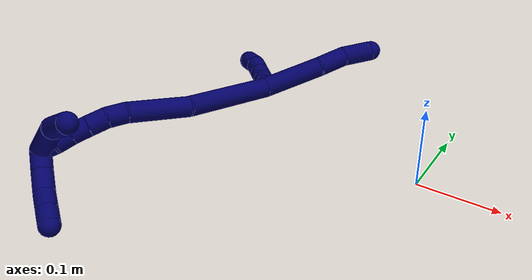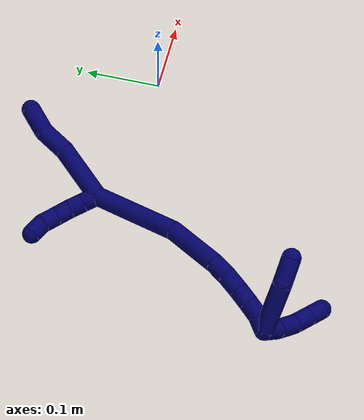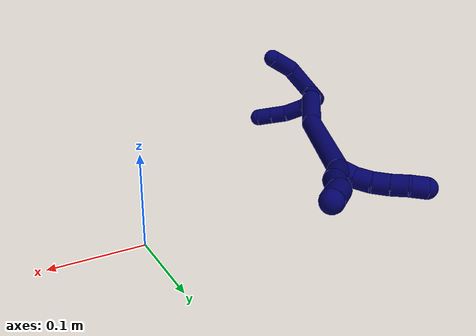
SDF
<sdf version="1.7">
 <world name="default">
  <model name="7">
   <static>0</static>
   <link name="7">
    <collision name="collision-cylinder-e_1_2_8">
     <pose>0.003509 0.000836 -0.037568 -3.11933 0.093122 -2.67258</pose>
     <geometry><cylinder><radius>0.0125</radius><length>0.075482</length></cylinder></geometry>
     <surface>
      <friction><ode><mu>1.16</mu><mu2>1.16</mu2><slip1>0</slip1><slip2>0</slip2></ode></friction>
      <contact><ode><kp>1e+06</kp><kd>1</kd><max_vel>0</max_vel><min_depth>0.001</min_depth></ode></contact>
     </surface>
    </collision>
    <visual name="visual-cylinder-e_1_2_8">
     <pose>0.003509 0.000836 -0.037568 -3.11933 0.093122 -2.67258</pose>
     <geometry><cylinder><radius>0.0125</radius><length>0.075482</length></cylinder></geometry>
     <material><ambient>0.003922 0 0.403922 1</ambient></material>
    </visual>
    <collision name="collision-cylinder-e_2_8_9">
     <pose>0.009642 0.00573 -0.09326 -2.92139 0.140316 -1.1325</pose>
     <geometry><cylinder><radius>0.0125</radius><length>0.037513</length></cylinder></geometry>
     <surface>
      <friction><ode><mu>1.16</mu><mu2>1.16</mu2><slip1>0</slip1><slip2>0</slip2></ode></friction>
      <contact><ode><kp>1e+06</kp><kd>1</kd><max_vel>0</max_vel><min_depth>0.001</min_depth></ode></contact>
     </surface>
    </collision>
    <visual name="visual-cylinder-e_2_8_9">
     <pose>0.009642 0.00573 -0.09326 -2.92139 0.140316 -1.1325</pose>
     <geometry><cylinder><radius>0.0125</radius><length>0.037513</length></cylinder></geometry>
     <material><ambient>0.003922 0 0.403922 1</ambient></material>
    </visual>
    <collision name="collision-cylinder-e_3_9_6">
     <pose>0.010984 0.009656 -0.129841 3.13454 -0.069283 -2.93866</pose>
     <geometry><cylinder><radius>0.0125</radius><length>0.037005</length></cylinder></geometry>
     <surface>
      <friction><ode><mu>1.16</mu><mu2>1.16</mu2><slip1>0</slip1><slip2>0</slip2></ode></friction>
      <contact><ode><kp>1e+06</kp><kd>1</kd><max_vel>0</max_vel><min_depth>0.001</min_depth></ode></contact>
     </surface>
    </collision>
    <visual name="visual-cylinder-e_3_9_6">
     <pose>0.010984 0.009656 -0.129841 3.13454 -0.069283 -2.93866</pose>
     <geometry><cylinder><radius>0.0125</radius><length>0.037005</length></cylinder></geometry>
     <material><ambient>0.003922 0 0.403922 1</ambient></material>
    </visual>
    <collision name="collision-cylinder-e_1_2_10">
     <pose>0.002919 0.009437 -0.001558 -1.73446 0.296227 -0.348172</pose>
     <geometry><cylinder><radius>0.0125</radius><length>0.02</length></cylinder></geometry>
     <surface>
      <friction><ode><mu>1.16</mu><mu2>1.16</mu2><slip1>0</slip1><slip2>0</slip2></ode></friction>
      <contact><ode><kp>1e+06</kp><kd>1</kd><max_vel>0</max_vel><min_depth>0.001</min_depth></ode></contact>
     </surface>
    </collision>
    <visual name="visual-cylinder-e_1_2_10">
     <pose>0.002919 0.009437 -0.001558 -1.73446 0.296227 -0.348172</pose>
     <geometry><cylinder><radius>0.0125</radius><length>0.02</length></cylinder></geometry>
     <material><ambient>0.003922 0 0.403922 1</ambient></material>
    </visual>
    <collision name="collision-cylinder-e_2_10_11">
     <pose>0.010477 0.027687 -0.004009 -1.67171 0.482414 -0.531456</pose>
     <geometry><cylinder><radius>0.0125</radius><length>0.02</length></cylinder></geometry>
     <surface>
      <friction><ode><mu>1.16</mu><mu2>1.16</mu2><slip1>0</slip1><slip2>0</slip2></ode></friction>
      <contact><ode><kp>1e+06</kp><kd>1</kd><max_vel>0</max_vel><min_depth>0.001</min_depth></ode></contact>
     </surface>
    </collision>
    <visual name="visual-cylinder-e_2_10_11">
     <pose>0.010477 0.027687 -0.004009 -1.67171 0.482414 -0.531456</pose>
     <geometry><cylinder><radius>0.0125</radius><length>0.02</length></cylinder></geometry>
     <material><ambient>0.003922 0 0.403922 1</ambient></material>
    </visual>
    <collision name="collision-cylinder-e_3_11_12">
     <pose>0.020825 0.04471 -0.004772 -1.55505 0.607513 -0.598581</pose>
     <geometry><cylinder><radius>0.0125</radius><length>0.02</length></cylinder></geometry>
     <surface>
      <friction><ode><mu>1.16</mu><mu2>1.16</mu2><slip1>0</slip1><slip2>0</slip2></ode></friction>
      <contact><ode><kp>1e+06</kp><kd>1</kd><max_vel>0</max_vel><min_depth>0.001</min_depth></ode></contact>
     </surface>
    </collision>
    <visual name="visual-cylinder-e_3_11_12">
     <pose>0.020825 0.04471 -0.004772 -1.55505 0.607513 -0.598581</pose>
     <geometry><cylinder><radius>0.0125</radius><length>0.02</length></cylinder></geometry>
     <material><ambient>0.003922 0 0.403922 1</ambient></material>
    </visual>
    <collision name="collision-cylinder-e_4_12_13">
     <pose>0.032928 0.060606 -0.004439 -1.54422 0.69377 -0.676949</pose>
     <geometry><cylinder><radius>0.0125</radius><length>0.02</length></cylinder></geometry>
     <surface>
      <friction><ode><mu>1.16</mu><mu2>1.16</mu2><slip1>0</slip1><slip2>0</slip2></ode></friction>
      <contact><ode><kp>1e+06</kp><kd>1</kd><max_vel>0</max_vel><min_depth>0.001</min_depth></ode></contact>
     </surface>
    </collision>
    <visual name="visual-cylinder-e_4_12_13">
     <pose>0.032928 0.060606 -0.004439 -1.54422 0.69377 -0.676949</pose>
     <geometry><cylinder><radius>0.0125</radius><length>0.02</length></cylinder></geometry>
     <material><ambient>0.003922 0 0.403922 1</ambient></material>
    </visual>
    <collision name="collision-cylinder-e_5_13_5">
     <pose>0.044451 0.076425 -0.001491 -1.2455 0.538618 -0.391324</pose>
     <geometry><cylinder><radius>0.0125</radius><length>0.02</length></cylinder></geometry>
     <surface>
      <friction><ode><mu>1.16</mu><mu2>1.16</mu2><slip1>0</slip1><slip2>0</slip2></ode></friction>
      <contact><ode><kp>1e+06</kp><kd>1</kd><max_vel>0</max_vel><min_depth>0.001</min_depth></ode></contact>
     </surface>
    </collision>
    <visual name="visual-cylinder-e_5_13_5">
     <pose>0.044451 0.076425 -0.001491 -1.2455 0.538618 -0.391324</pose>
     <geometry><cylinder><radius>0.0125</radius><length>0.02</length></cylinder></geometry>
     <material><ambient>0.003922 0 0.403922 1</ambient></material>
    </visual>
    <collision name="collision-cylinder-e_1_2_14">
     <pose>-0.001078 -0.030828 0.050431 0.548685 -0.018243 -0.005134</pose>
     <geometry><cylinder><radius>0.0125</radius><length>0.118234</length></cylinder></geometry>
     <surface>
      <friction><ode><mu>1.16</mu><mu2>1.16</mu2><slip1>0</slip1><slip2>0</slip2></ode></friction>
      <contact><ode><kp>1e+06</kp><kd>1</kd><max_vel>0</max_vel><min_depth>0.001</min_depth></ode></contact>
     </surface>
    </collision>
    <visual name="visual-cylinder-e_1_2_14">
     <pose>-0.001078 -0.030828 0.050431 0.548685 -0.018243 -0.005134</pose>
     <geometry><cylinder><radius>0.0125</radius><length>0.118234</length></cylinder></geometry>
     <material><ambient>0.003922 0 0.403922 1</ambient></material>
    </visual>
    <collision name="collision-cylinder-e_2_14_15">
     <pose>0.00313 -0.074617 0.135961 0.353728 0.140378 0.02513</pose>
     <geometry><cylinder><radius>0.0125</radius><length>0.075575</length></cylinder></geometry>
     <surface>
      <friction><ode><mu>1.16</mu><mu2>1.16</mu2><slip1>0</slip1><slip2>0</slip2></ode></friction>
      <contact><ode><kp>1e+06</kp><kd>1</kd><max_vel>0</max_vel><min_depth>0.001</min_depth></ode></contact>
     </surface>
    </collision>
    <visual name="visual-cylinder-e_2_14_15">
     <pose>0.00313 -0.074617 0.135961 0.353728 0.140378 0.02513</pose>
     <geometry><cylinder><radius>0.0125</radius><length>0.075575</length></cylinder></geometry>
     <material><ambient>0.003922 0 0.403922 1</ambient></material>
    </visual>
    <collision name="collision-cylinder-e_3_15_16">
     <pose>0.008521 -0.089884 0.182274 0.202848 0.009045 0.000921</pose>
     <geometry><cylinder><radius>0.0125</radius><length>0.022898</length></cylinder></geometry>
     <surface>
      <friction><ode><mu>1.16</mu><mu2>1.16</mu2><slip1>0</slip1><slip2>0</slip2></ode></friction>
      <contact><ode><kp>1e+06</kp><kd>1</kd><max_vel>0</max_vel><min_depth>0.001</min_depth></ode></contact>
     </surface>
    </collision>
    <visual name="visual-cylinder-e_3_15_16">
     <pose>0.008521 -0.089884 0.182274 0.202848 0.009045 0.000921</pose>
     <geometry><cylinder><radius>0.0125</radius><length>0.022898</length></cylinder></geometry>
     <material><ambient>0.003922 0 0.403922 1</ambient></material>
    </visual>
    <collision name="collision-cylinder-e_4_16_17">
     <pose>0.006769 -0.092898 0.204713 0.062925 -0.163511 -0.005158</pose>
     <geometry><cylinder><radius>0.0125</radius><length>0.022797</length></cylinder></geometry>
     <surface>
      <friction><ode><mu>1.16</mu><mu2>1.16</mu2><slip1>0</slip1><slip2>0</slip2></ode></friction>
      <contact><ode><kp>1e+06</kp><kd>1</kd><max_vel>0</max_vel><min_depth>0.001</min_depth></ode></contact>
     </surface>
    </collision>
    <visual name="visual-cylinder-e_4_16_17">
     <pose>0.006769 -0.092898 0.204713 0.062925 -0.163511 -0.005158</pose>
     <geometry><cylinder><radius>0.0125</radius><length>0.022797</length></cylinder></geometry>
     <material><ambient>0.003922 0 0.403922 1</ambient></material>
    </visual>
    <collision name="collision-cylinder-e_5_17_18">
     <pose>0.003074 -0.093841 0.225859 0.023773 -0.183255 -0.002184</pose>
     <geometry><cylinder><radius>0.0125</radius><length>0.020187</length></cylinder></geometry>
     <surface>
      <friction><ode><mu>1.16</mu><mu2>1.16</mu2><slip1>0</slip1><slip2>0</slip2></ode></friction>
      <contact><ode><kp>1e+06</kp><kd>1</kd><max_vel>0</max_vel><min_depth>0.001</min_depth></ode></contact>
     </surface>
    </collision>
    <visual name="visual-cylinder-e_5_17_18">
     <pose>0.003074 -0.093841 0.225859 0.023773 -0.183255 -0.002184</pose>
     <geometry><cylinder><radius>0.0125</radius><length>0.020187</length></cylinder></geometry>
     <material><ambient>0.003922 0 0.403922 1</ambient></material>
    </visual>
    <collision name="collision-cylinder-e_6_18_19">
     <pose>-0.00132 -0.093729 0.245596 -0.03543 -0.254498 0.004533</pose>
     <geometry><cylinder><radius>0.0125</radius><length>0.020296</length></cylinder></geometry>
     <surface>
      <friction><ode><mu>1.16</mu><mu2>1.16</mu2><slip1>0</slip1><slip2>0</slip2></ode></friction>
      <contact><ode><kp>1e+06</kp><kd>1</kd><max_vel>0</max_vel><min_depth>0.001</min_depth></ode></contact>
     </surface>
    </collision>
    <visual name="visual-cylinder-e_6_18_19">
     <pose>-0.00132 -0.093729 0.245596 -0.03543 -0.254498 0.004533</pose>
     <geometry><cylinder><radius>0.0125</radius><length>0.020296</length></cylinder></geometry>
     <material><ambient>0.003922 0 0.403922 1</ambient></material>
    </visual>
    <collision name="collision-cylinder-e_7_19_1">
     <pose>-0.004879 -0.091187 0.265122 -0.222212 -0.100533 0.011225</pose>
     <geometry><cylinder><radius>0.0125</radius><length>0.020012</length></cylinder></geometry>
     <surface>
      <friction><ode><mu>1.16</mu><mu2>1.16</mu2><slip1>0</slip1><slip2>0</slip2></ode></friction>
      <contact><ode><kp>1e+06</kp><kd>1</kd><max_vel>0</max_vel><min_depth>0.001</min_depth></ode></contact>
     </surface>
    </collision>
    <visual name="visual-cylinder-e_7_19_1">
     <pose>-0.004879 -0.091187 0.265122 -0.222212 -0.100533 0.011225</pose>
     <geometry><cylinder><radius>0.0125</radius><length>0.020012</length></cylinder></geometry>
     <material><ambient>0.003922 0 0.403922 1</ambient></material>
    </visual>
    <collision name="collision-cylinder-e_1_1_20">
     <pose>-0.018186 -0.092853 0.276464 1.17081 -1.24249 -0.886097</pose>
     <geometry><cylinder><radius>0.0125</radius><length>0.025993</length></cylinder></geometry>
     <surface>
      <friction><ode><mu>1.16</mu><mu2>1.16</mu2><slip1>0</slip1><slip2>0</slip2></ode></friction>
      <contact><ode><kp>1e+06</kp><kd>1</kd><max_vel>0</max_vel><min_depth>0.001</min_depth></ode></contact>
     </surface>
    </collision>
    <visual name="visual-cylinder-e_1_1_20">
     <pose>-0.018186 -0.092853 0.276464 1.17081 -1.24249 -0.886097</pose>
     <geometry><cylinder><radius>0.0125</radius><length>0.025993</length></cylinder></geometry>
     <material><ambient>0.003922 0 0.403922 1</ambient></material>
    </visual>
    <collision name="collision-cylinder-e_2_20_21">
     <pose>-0.043036 -0.103649 0.278878 1.45853 -1.06311 -0.967584</pose>
     <geometry><cylinder><radius>0.0125</radius><length>0.028716</length></cylinder></geometry>
     <surface>
      <friction><ode><mu>1.16</mu><mu2>1.16</mu2><slip1>0</slip1><slip2>0</slip2></ode></friction>
      <contact><ode><kp>1e+06</kp><kd>1</kd><max_vel>0</max_vel><min_depth>0.001</min_depth></ode></contact>
     </surface>
    </collision>
    <visual name="visual-cylinder-e_2_20_21">
     <pose>-0.043036 -0.103649 0.278878 1.45853 -1.06311 -0.967584</pose>
     <geometry><cylinder><radius>0.0125</radius><length>0.028716</length></cylinder></geometry>
     <material><ambient>0.003922 0 0.403922 1</ambient></material>
    </visual>
    <collision name="collision-cylinder-e_3_21_22">
     <pose>-0.064493 -0.118215 0.279166 1.63551 -0.861656 -0.911831</pose>
     <geometry><cylinder><radius>0.0125</radius><length>0.023481</length></cylinder></geometry>
     <surface>
      <friction><ode><mu>1.16</mu><mu2>1.16</mu2><slip1>0</slip1><slip2>0</slip2></ode></friction>
      <contact><ode><kp>1e+06</kp><kd>1</kd><max_vel>0</max_vel><min_depth>0.001</min_depth></ode></contact>
     </surface>
    </collision>
    <visual name="visual-cylinder-e_3_21_22">
     <pose>-0.064493 -0.118215 0.279166 1.63551 -0.861656 -0.911831</pose>
     <geometry><cylinder><radius>0.0125</radius><length>0.023481</length></cylinder></geometry>
     <material><ambient>0.003922 0 0.403922 1</ambient></material>
    </visual>
    <collision name="collision-cylinder-e_4_22_4">
     <pose>-0.081699 -0.132906 0.278198 1.63768 -0.86451 -0.916534</pose>
     <geometry><cylinder><radius>0.0125</radius><length>0.021809</length></cylinder></geometry>
     <surface>
      <friction><ode><mu>1.16</mu><mu2>1.16</mu2><slip1>0</slip1><slip2>0</slip2></ode></friction>
      <contact><ode><kp>1e+06</kp><kd>1</kd><max_vel>0</max_vel><min_depth>0.001</min_depth></ode></contact>
     </surface>
    </collision>
    <visual name="visual-cylinder-e_4_22_4">
     <pose>-0.081699 -0.132906 0.278198 1.63768 -0.86451 -0.916534</pose>
     <geometry><cylinder><radius>0.0125</radius><length>0.021809</length></cylinder></geometry>
     <material><ambient>0.003922 0 0.403922 1</ambient></material>
    </visual>
    <collision name="collision-cylinder-e_1_1_23">
     <pose>0.001092 -0.117345 0.260745 2.03193 0.216881 0.347768</pose>
     <geometry><cylinder><radius>0.0125</radius><length>0.064837</length></cylinder></geometry>
     <surface>
      <friction><ode><mu>1.16</mu><mu2>1.16</mu2><slip1>0</slip1><slip2>0</slip2></ode></friction>
      <contact><ode><kp>1e+06</kp><kd>1</kd><max_vel>0</max_vel><min_depth>0.001</min_depth></ode></contact>
     </surface>
    </collision>
    <visual name="visual-cylinder-e_1_1_23">
     <pose>0.001092 -0.117345 0.260745 2.03193 0.216881 0.347768</pose>
     <geometry><cylinder><radius>0.0125</radius><length>0.064837</length></cylinder></geometry>
     <material><ambient>0.003922 0 0.403922 1</ambient></material>
    </visual>
    <collision name="collision-cylinder-e_2_23_3">
     <pose>0.006936 -0.160039 0.236551 2.18469 -0.064446 -0.124141</pose>
     <geometry><cylinder><radius>0.0125</radius><length>0.035163</length></cylinder></geometry>
     <surface>
      <friction><ode><mu>1.16</mu><mu2>1.16</mu2><slip1>0</slip1><slip2>0</slip2></ode></friction>
      <contact><ode><kp>1e+06</kp><kd>1</kd><max_vel>0</max_vel><min_depth>0.001</min_depth></ode></contact>
     </surface>
    </collision>
    <visual name="visual-cylinder-e_2_23_3">
     <pose>0.006936 -0.160039 0.236551 2.18469 -0.064446 -0.124141</pose>
     <geometry><cylinder><radius>0.0125</radius><length>0.035163</length></cylinder></geometry>
     <material><ambient>0.003922 0 0.403922 1</ambient></material>
    </visual>
    <collision name="collision-sphere-3">
     <pose>0.005804 -0.174381 0.226444 0 -0 0</pose>
     <geometry><sphere><radius>0.0125</radius></sphere></geometry>
     <surface>
      <friction><ode><mu>1.16</mu><mu2>1.16</mu2><slip1>0</slip1><slip2>0</slip2></ode></friction>
      <contact><ode><kp>1e+06</kp><kd>1</kd><max_vel>0</max_vel><min_depth>0.001</min_depth></ode></contact>
     </surface>
    </collision>
    <visual name="visual-sphere-3">
     <pose>0.005804 -0.174381 0.226444 0 -0 0</pose>
     <geometry><sphere><radius>0.0125</radius></sphere></geometry>
     <material><ambient>0.003922 0 0.403922 1</ambient></material>
    </visual>
    <collision name="collision-sphere-23">
     <pose>0.008068 -0.145697 0.246658 0 -0 0</pose>
     <geometry><sphere><radius>0.0125</radius></sphere></geometry>
     <surface>
      <friction><ode><mu>1.16</mu><mu2>1.16</mu2><slip1>0</slip1><slip2>0</slip2></ode></friction>
      <contact><ode><kp>1e+06</kp><kd>1</kd><max_vel>0</max_vel><min_depth>0.001</min_depth></ode></contact>
     </surface>
    </collision>
    <visual name="visual-sphere-23">
     <pose>0.008068 -0.145697 0.246658 0 -0 0</pose>
     <geometry><sphere><radius>0.0125</radius></sphere></geometry>
     <material><ambient>0.003922 0 0.403922 1</ambient></material>
    </visual>
    <collision name="collision-sphere-4">
     <pose>-0.089995 -0.139967 0.277725 0 -0 0</pose>
     <geometry><sphere><radius>0.0125</radius></sphere></geometry>
     <surface>
      <friction><ode><mu>1.16</mu><mu2>1.16</mu2><slip1>0</slip1><slip2>0</slip2></ode></friction>
      <contact><ode><kp>1e+06</kp><kd>1</kd><max_vel>0</max_vel><min_depth>0.001</min_depth></ode></contact>
     </surface>
    </collision>
    <visual name="visual-sphere-4">
     <pose>-0.089995 -0.139967 0.277725 0 -0 0</pose>
     <geometry><sphere><radius>0.0125</radius></sphere></geometry>
     <material><ambient>0.003922 0 0.403922 1</ambient></material>
    </visual>
    <collision name="collision-sphere-22">
     <pose>-0.073403 -0.125844 0.278671 0 -0 0</pose>
     <geometry><sphere><radius>0.0125</radius></sphere></geometry>
     <surface>
      <friction><ode><mu>1.16</mu><mu2>1.16</mu2><slip1>0</slip1><slip2>0</slip2></ode></friction>
      <contact><ode><kp>1e+06</kp><kd>1</kd><max_vel>0</max_vel><min_depth>0.001</min_depth></ode></contact>
     </surface>
    </collision>
    <visual name="visual-sphere-22">
     <pose>-0.073403 -0.125844 0.278671 0 -0 0</pose>
     <geometry><sphere><radius>0.0125</radius></sphere></geometry>
     <material><ambient>0.003922 0 0.403922 1</ambient></material>
    </visual>
    <collision name="collision-sphere-21">
     <pose>-0.055583 -0.110586 0.27966 0 -0 0</pose>
     <geometry><sphere><radius>0.0125</radius></sphere></geometry>
     <surface>
      <friction><ode><mu>1.16</mu><mu2>1.16</mu2><slip1>0</slip1><slip2>0</slip2></ode></friction>
      <contact><ode><kp>1e+06</kp><kd>1</kd><max_vel>0</max_vel><min_depth>0.001</min_depth></ode></contact>
     </surface>
    </collision>
    <visual name="visual-sphere-21">
     <pose>-0.055583 -0.110586 0.27966 0 -0 0</pose>
     <geometry><sphere><radius>0.0125</radius></sphere></geometry>
     <material><ambient>0.003922 0 0.403922 1</ambient></material>
    </visual>
    <collision name="collision-sphere-20">
     <pose>-0.030489 -0.096713 0.278096 0 -0 0</pose>
     <geometry><sphere><radius>0.0125</radius></sphere></geometry>
     <surface>
      <friction><ode><mu>1.16</mu><mu2>1.16</mu2><slip1>0</slip1><slip2>0</slip2></ode></friction>
      <contact><ode><kp>1e+06</kp><kd>1</kd><max_vel>0</max_vel><min_depth>0.001</min_depth></ode></contact>
     </surface>
    </collision>
    <visual name="visual-sphere-20">
     <pose>-0.030489 -0.096713 0.278096 0 -0 0</pose>
     <geometry><sphere><radius>0.0125</radius></sphere></geometry>
     <material><ambient>0.003922 0 0.403922 1</ambient></material>
    </visual>
    <collision name="collision-sphere-11">
     <pose>0.015117 0.036501 -0.004902 0 -0 0</pose>
     <geometry><sphere><radius>0.0125</radius></sphere></geometry>
     <surface>
      <friction><ode><mu>1.16</mu><mu2>1.16</mu2><slip1>0</slip1><slip2>0</slip2></ode></friction>
      <contact><ode><kp>1e+06</kp><kd>1</kd><max_vel>0</max_vel><min_depth>0.001</min_depth></ode></contact>
     </surface>
    </collision>
    <visual name="visual-sphere-11">
     <pose>0.015117 0.036501 -0.004902 0 -0 0</pose>
     <geometry><sphere><radius>0.0125</radius></sphere></geometry>
     <material><ambient>0.003922 0 0.403922 1</ambient></material>
    </visual>
    <collision name="collision-sphere-10">
     <pose>0.005838 0.018873 -0.003117 0 -0 0</pose>
     <geometry><sphere><radius>0.0125</radius></sphere></geometry>
     <surface>
      <friction><ode><mu>1.16</mu><mu2>1.16</mu2><slip1>0</slip1><slip2>0</slip2></ode></friction>
      <contact><ode><kp>1e+06</kp><kd>1</kd><max_vel>0</max_vel><min_depth>0.001</min_depth></ode></contact>
     </surface>
    </collision>
    <visual name="visual-sphere-10">
     <pose>0.005838 0.018873 -0.003117 0 -0 0</pose>
     <geometry><sphere><radius>0.0125</radius></sphere></geometry>
     <material><ambient>0.003922 0 0.403922 1</ambient></material>
    </visual>
    <collision name="collision-sphere-6">
     <pose>0.009704 0.009526 -0.148299 0 -0 0</pose>
     <geometry><sphere><radius>0.0125</radius></sphere></geometry>
     <surface>
      <friction><ode><mu>1.16</mu><mu2>1.16</mu2><slip1>0</slip1><slip2>0</slip2></ode></friction>
      <contact><ode><kp>1e+06</kp><kd>1</kd><max_vel>0</max_vel><min_depth>0.001</min_depth></ode></contact>
     </surface>
    </collision>
    <visual name="visual-sphere-6">
     <pose>0.009704 0.009526 -0.148299 0 -0 0</pose>
     <geometry><sphere><radius>0.0125</radius></sphere></geometry>
     <material><ambient>0.003922 0 0.403922 1</ambient></material>
    </visual>
    <collision name="collision-sphere-9">
     <pose>0.012265 0.009786 -0.111383 0 -0 0</pose>
     <geometry><sphere><radius>0.0125</radius></sphere></geometry>
     <surface>
      <friction><ode><mu>1.16</mu><mu2>1.16</mu2><slip1>0</slip1><slip2>0</slip2></ode></friction>
      <contact><ode><kp>1e+06</kp><kd>1</kd><max_vel>0</max_vel><min_depth>0.001</min_depth></ode></contact>
     </surface>
    </collision>
    <visual name="visual-sphere-9">
     <pose>0.012265 0.009786 -0.111383 0 -0 0</pose>
     <geometry><sphere><radius>0.0125</radius></sphere></geometry>
     <material><ambient>0.003922 0 0.403922 1</ambient></material>
    </visual>
    <collision name="collision-sphere-2">
     <geometry><sphere><radius>0.0125</radius></sphere></geometry>
     <surface>
      <friction><ode><mu>1.16</mu><mu2>1.16</mu2><slip1>0</slip1><slip2>0</slip2></ode></friction>
      <contact><ode><kp>1e+06</kp><kd>1</kd><max_vel>0</max_vel><min_depth>0.001</min_depth></ode></contact>
     </surface>
    </collision>
    <visual name="visual-sphere-2">
     <geometry><sphere><radius>0.0125</radius></sphere></geometry>
     <material><ambient>0.003922 0 0.403922 1</ambient></material>
    </visual>
    <collision name="collision-sphere-19">
     <pose>-0.003875 -0.093381 0.255411 0 -0 0</pose>
     <geometry><sphere><radius>0.0125</radius></sphere></geometry>
     <surface>
      <friction><ode><mu>1.16</mu><mu2>1.16</mu2><slip1>0</slip1><slip2>0</slip2></ode></friction>
      <contact><ode><kp>1e+06</kp><kd>1</kd><max_vel>0</max_vel><min_depth>0.001</min_depth></ode></contact>
     </surface>
    </collision>
    <visual name="visual-sphere-19">
     <pose>-0.003875 -0.093381 0.255411 0 -0 0</pose>
     <geometry><sphere><radius>0.0125</radius></sphere></geometry>
     <material><ambient>0.003922 0 0.403922 1</ambient></material>
    </visual>
    <collision name="collision-sphere-8">
     <pose>0.007019 0.001673 -0.075136 0 -0 0</pose>
     <geometry><sphere><radius>0.0125</radius></sphere></geometry>
     <surface>
      <friction><ode><mu>1.16</mu><mu2>1.16</mu2><slip1>0</slip1><slip2>0</slip2></ode></friction>
      <contact><ode><kp>1e+06</kp><kd>1</kd><max_vel>0</max_vel><min_depth>0.001</min_depth></ode></contact>
     </surface>
    </collision>
    <visual name="visual-sphere-8">
     <pose>0.007019 0.001673 -0.075136 0 -0 0</pose>
     <geometry><sphere><radius>0.0125</radius></sphere></geometry>
     <material><ambient>0.003922 0 0.403922 1</ambient></material>
    </visual>
    <collision name="collision-sphere-12">
     <pose>0.026533 0.05292 -0.004643 0 -0 0</pose>
     <geometry><sphere><radius>0.0125</radius></sphere></geometry>
     <surface>
      <friction><ode><mu>1.16</mu><mu2>1.16</mu2><slip1>0</slip1><slip2>0</slip2></ode></friction>
      <contact><ode><kp>1e+06</kp><kd>1</kd><max_vel>0</max_vel><min_depth>0.001</min_depth></ode></contact>
     </surface>
    </collision>
    <visual name="visual-sphere-12">
     <pose>0.026533 0.05292 -0.004643 0 -0 0</pose>
     <geometry><sphere><radius>0.0125</radius></sphere></geometry>
     <material><ambient>0.003922 0 0.403922 1</ambient></material>
    </visual>
    <collision name="collision-sphere-13">
     <pose>0.039322 0.068291 -0.004234 0 -0 0</pose>
     <geometry><sphere><radius>0.0125</radius></sphere></geometry>
     <surface>
      <friction><ode><mu>1.16</mu><mu2>1.16</mu2><slip1>0</slip1><slip2>0</slip2></ode></friction>
      <contact><ode><kp>1e+06</kp><kd>1</kd><max_vel>0</max_vel><min_depth>0.001</min_depth></ode></contact>
     </surface>
    </collision>
    <visual name="visual-sphere-13">
     <pose>0.039322 0.068291 -0.004234 0 -0 0</pose>
     <geometry><sphere><radius>0.0125</radius></sphere></geometry>
     <material><ambient>0.003922 0 0.403922 1</ambient></material>
    </visual>
    <collision name="collision-sphere-5">
     <pose>0.049581 0.084559 0.001252 0 -0 0</pose>
     <geometry><sphere><radius>0.0125</radius></sphere></geometry>
     <surface>
      <friction><ode><mu>1.16</mu><mu2>1.16</mu2><slip1>0</slip1><slip2>0</slip2></ode></friction>
      <contact><ode><kp>1e+06</kp><kd>1</kd><max_vel>0</max_vel><min_depth>0.001</min_depth></ode></contact>
     </surface>
    </collision>
    <visual name="visual-sphere-5">
     <pose>0.049581 0.084559 0.001252 0 -0 0</pose>
     <geometry><sphere><radius>0.0125</radius></sphere></geometry>
     <material><ambient>0.003922 0 0.403922 1</ambient></material>
    </visual>
    <collision name="collision-sphere-14">
     <pose>-0.002157 -0.061656 0.100861 0 -0 0</pose>
     <geometry><sphere><radius>0.0125</radius></sphere></geometry>
     <surface>
      <friction><ode><mu>1.16</mu><mu2>1.16</mu2><slip1>0</slip1><slip2>0</slip2></ode></friction>
      <contact><ode><kp>1e+06</kp><kd>1</kd><max_vel>0</max_vel><min_depth>0.001</min_depth></ode></contact>
     </surface>
    </collision>
    <visual name="visual-sphere-14">
     <pose>-0.002157 -0.061656 0.100861 0 -0 0</pose>
     <geometry><sphere><radius>0.0125</radius></sphere></geometry>
     <material><ambient>0.003922 0 0.403922 1</ambient></material>
    </visual>
    <collision name="collision-sphere-15">
     <pose>0.008417 -0.087578 0.17106 0 -0 0</pose>
     <geometry><sphere><radius>0.0125</radius></sphere></geometry>
     <surface>
      <friction><ode><mu>1.16</mu><mu2>1.16</mu2><slip1>0</slip1><slip2>0</slip2></ode></friction>
      <contact><ode><kp>1e+06</kp><kd>1</kd><max_vel>0</max_vel><min_depth>0.001</min_depth></ode></contact>
     </surface>
    </collision>
    <visual name="visual-sphere-15">
     <pose>0.008417 -0.087578 0.17106 0 -0 0</pose>
     <geometry><sphere><radius>0.0125</radius></sphere></geometry>
     <material><ambient>0.003922 0 0.403922 1</ambient></material>
    </visual>
    <collision name="collision-sphere-16">
     <pose>0.008625 -0.092191 0.193488 0 -0 0</pose>
     <geometry><sphere><radius>0.0125</radius></sphere></geometry>
     <surface>
      <friction><ode><mu>1.16</mu><mu2>1.16</mu2><slip1>0</slip1><slip2>0</slip2></ode></friction>
      <contact><ode><kp>1e+06</kp><kd>1</kd><max_vel>0</max_vel><min_depth>0.001</min_depth></ode></contact>
     </surface>
    </collision>
    <visual name="visual-sphere-16">
     <pose>0.008625 -0.092191 0.193488 0 -0 0</pose>
     <geometry><sphere><radius>0.0125</radius></sphere></geometry>
     <material><ambient>0.003922 0 0.403922 1</ambient></material>
    </visual>
    <collision name="collision-sphere-17">
     <pose>0.004914 -0.093605 0.215937 0 -0 0</pose>
     <geometry><sphere><radius>0.0125</radius></sphere></geometry>
     <surface>
      <friction><ode><mu>1.16</mu><mu2>1.16</mu2><slip1>0</slip1><slip2>0</slip2></ode></friction>
      <contact><ode><kp>1e+06</kp><kd>1</kd><max_vel>0</max_vel><min_depth>0.001</min_depth></ode></contact>
     </surface>
    </collision>
    <visual name="visual-sphere-17">
     <pose>0.004914 -0.093605 0.215937 0 -0 0</pose>
     <geometry><sphere><radius>0.0125</radius></sphere></geometry>
     <material><ambient>0.003922 0 0.403922 1</ambient></material>
    </visual>
    <collision name="collision-sphere-18">
     <pose>0.001235 -0.094077 0.235781 0 -0 0</pose>
     <geometry><sphere><radius>0.0125</radius></sphere></geometry>
     <surface>
      <friction><ode><mu>1.16</mu><mu2>1.16</mu2><slip1>0</slip1><slip2>0</slip2></ode></friction>
      <contact><ode><kp>1e+06</kp><kd>1</kd><max_vel>0</max_vel><min_depth>0.001</min_depth></ode></contact>
     </surface>
    </collision>
    <visual name="visual-sphere-18">
     <pose>0.001235 -0.094077 0.235781 0 -0 0</pose>
     <geometry><sphere><radius>0.0125</radius></sphere></geometry>
     <material><ambient>0.003922 0 0.403922 1</ambient></material>
    </visual>
    <collision name="collision-sphere-1">
     <pose>-0.005883 -0.088993 0.274832 0 -0 0</pose>
     <geometry><sphere><radius>0.0125</radius></sphere></geometry>
     <surface>
      <friction><ode><mu>1.16</mu><mu2>1.16</mu2><slip1>0</slip1><slip2>0</slip2></ode></friction>
      <contact><ode><kp>1e+06</kp><kd>1</kd><max_vel>0</max_vel><min_depth>0.001</min_depth></ode></contact>
     </surface>
    </collision>
    <visual name="visual-sphere-1">
     <pose>-0.005883 -0.088993 0.274832 0 -0 0</pose>
     <geometry><sphere><radius>0.0125</radius></sphere></geometry>
     <material><ambient>0.003922 0 0.403922 1</ambient></material>
    </visual>
    <inertial>
     <pose>-0.001372 -0.051159 0.108673 0 -0 0</pose>
     <mass>0.75</mass>
     <inertia>
      <ixx>0.000164</ixx>
      <ixy>0</ixy>
      <ixz>0</ixz>
      <iyy>0.000168</iyy>
      <iyz>0</iyz>
      <izz>0.00011</izz>
     </inertia>
    </inertial>
   </link>
   <pose>-0.223035 0.025658 0.049475 -1.86356 -0.908225 2.59933</pose>
  </model>
 </world>
</sdf>
